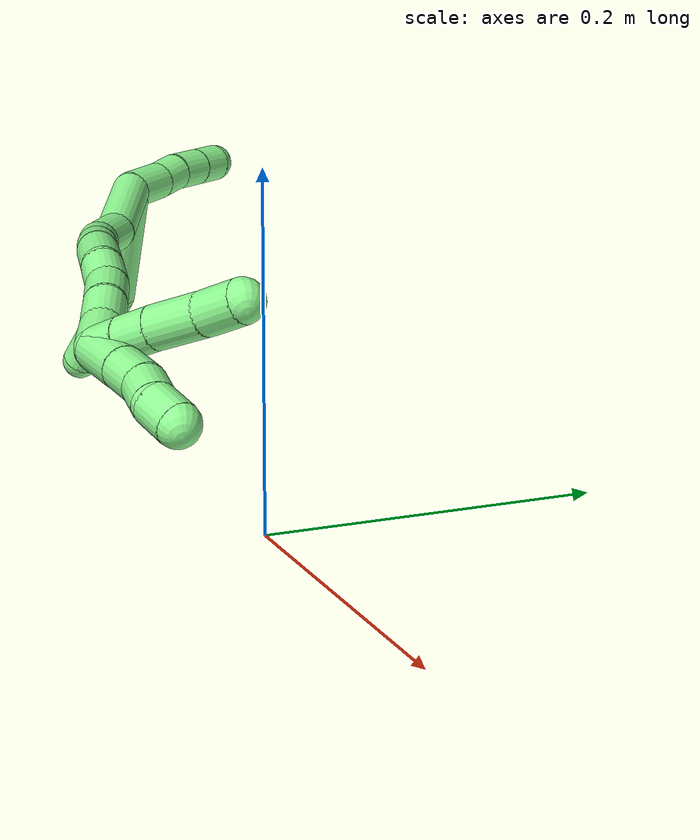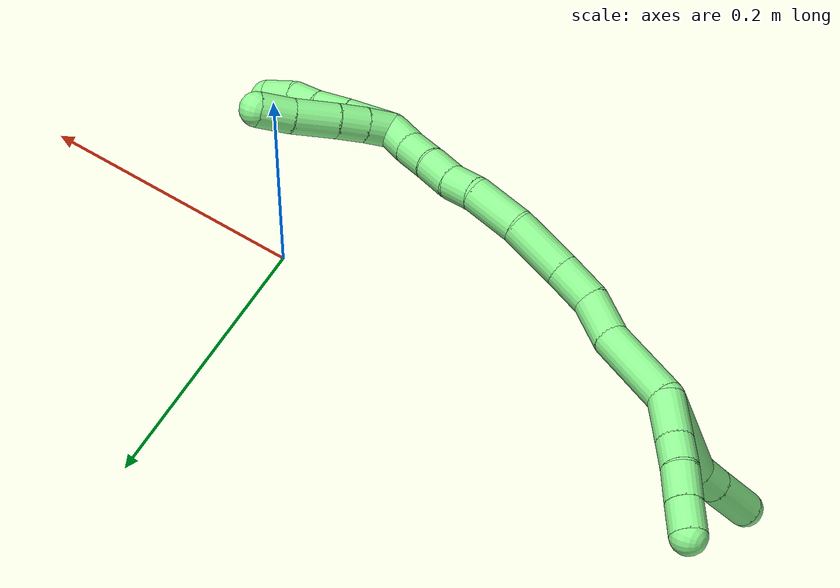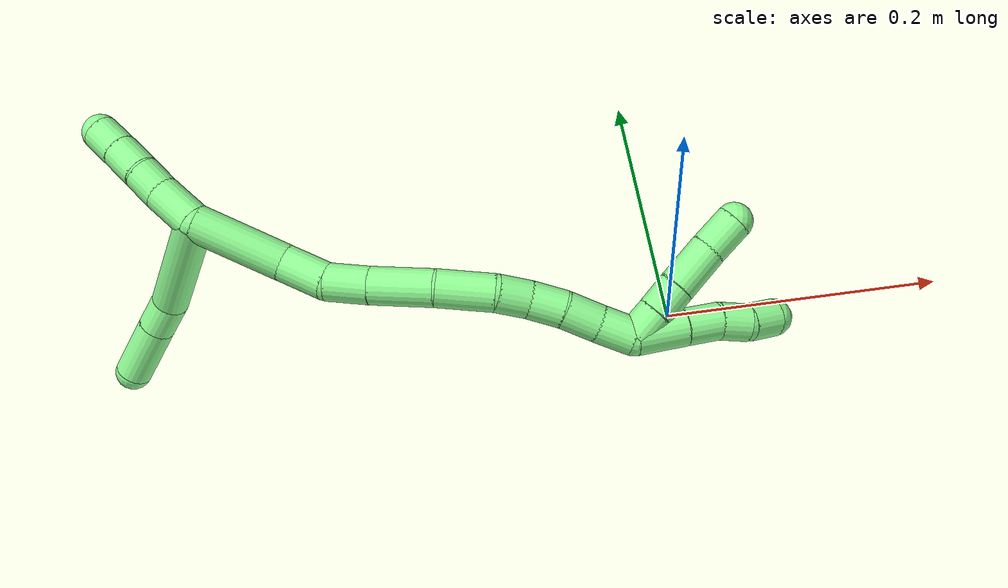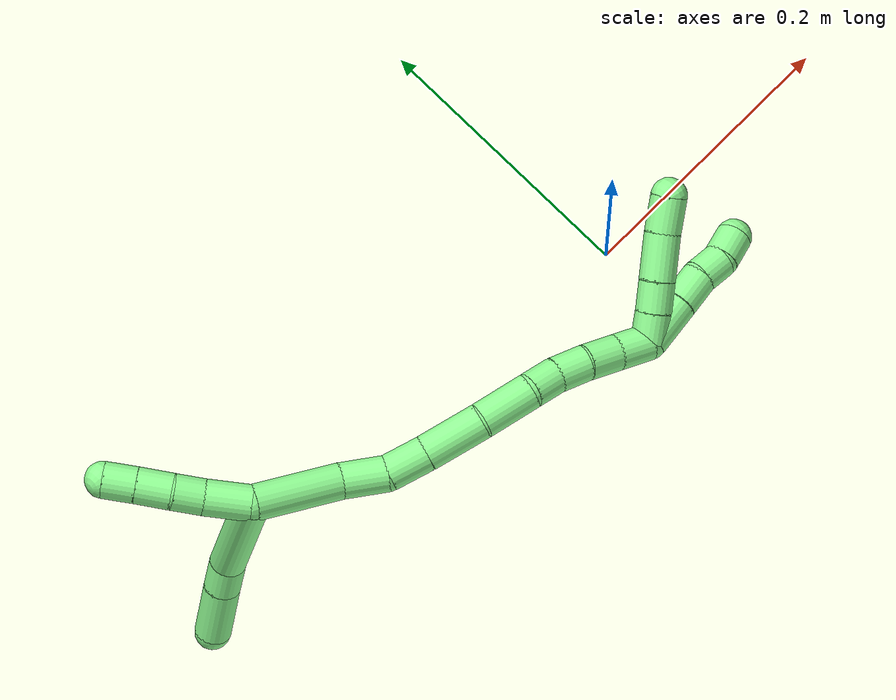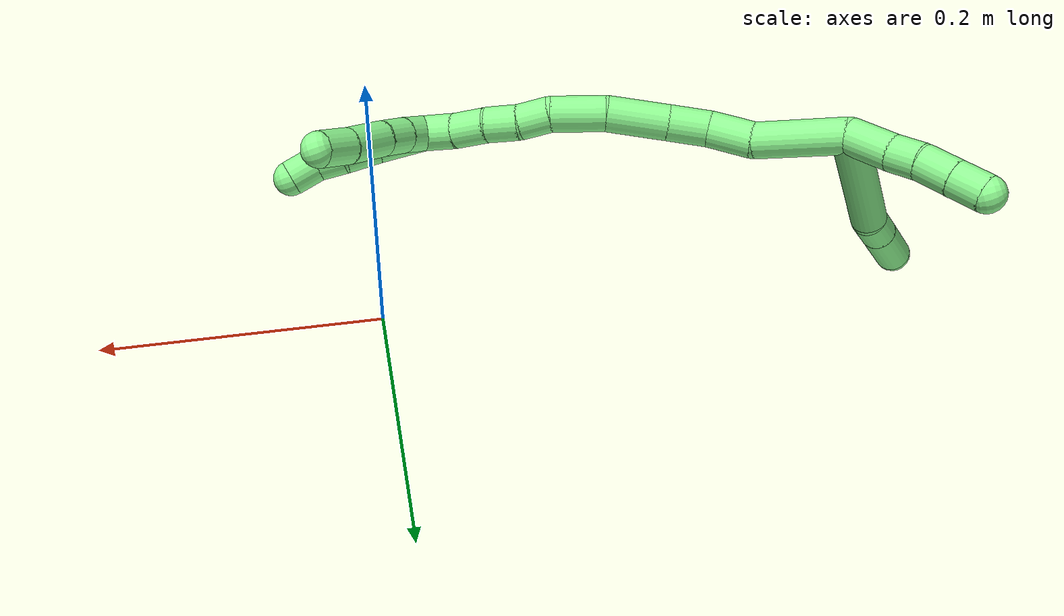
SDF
<sdf version="1.7">
 <world name="default">
  <model name="13">
   <static>0</static>
   <link name="13">
    <collision name="collision-cylinder-e_1_2_8">
     <pose>-0.041519 0.006219 -0.000514 -1.65327 -1.42162 1.50368</pose>
     <geometry><cylinder><radius>0.0125</radius><length>0.08397</length></cylinder></geometry>
     <surface>
      <friction><ode><mu>1.16</mu><mu2>1.16</mu2><slip1>0</slip1><slip2>0</slip2></ode></friction>
      <contact><ode><kp>1e+06</kp><kd>1</kd><max_vel>0</max_vel><min_depth>0.001</min_depth></ode></contact>
     </surface>
    </collision>
    <visual name="visual-cylinder-e_1_2_8">
     <pose>-0.041519 0.006219 -0.000514 -1.65327 -1.42162 1.50368</pose>
     <geometry><cylinder><radius>0.0125</radius><length>0.08397</length></cylinder></geometry>
     <material><ambient>0.564706 0.984314 0.572549 1</ambient></material>
    </visual>
    <collision name="collision-cylinder-e_2_8_9">
     <pose>-0.094609 0.011266 0.001126 0.49789 -1.36201 -0.406316</pose>
     <geometry><cylinder><radius>0.0125</radius><length>0.023656</length></cylinder></geometry>
     <surface>
      <friction><ode><mu>1.16</mu><mu2>1.16</mu2><slip1>0</slip1><slip2>0</slip2></ode></friction>
      <contact><ode><kp>1e+06</kp><kd>1</kd><max_vel>0</max_vel><min_depth>0.001</min_depth></ode></contact>
     </surface>
    </collision>
    <visual name="visual-cylinder-e_2_8_9">
     <pose>-0.094609 0.011266 0.001126 0.49789 -1.36201 -0.406316</pose>
     <geometry><cylinder><radius>0.0125</radius><length>0.023656</length></cylinder></geometry>
     <material><ambient>0.564706 0.984314 0.572549 1</ambient></material>
    </visual>
    <collision name="collision-cylinder-e_3_9_6">
     <pose>-0.126899 0.007621 0.006949 0.593348 -1.36036 -0.484862</pose>
     <geometry><cylinder><radius>0.0125</radius><length>0.042374</length></cylinder></geometry>
     <surface>
      <friction><ode><mu>1.16</mu><mu2>1.16</mu2><slip1>0</slip1><slip2>0</slip2></ode></friction>
      <contact><ode><kp>1e+06</kp><kd>1</kd><max_vel>0</max_vel><min_depth>0.001</min_depth></ode></contact>
     </surface>
    </collision>
    <visual name="visual-cylinder-e_3_9_6">
     <pose>-0.126899 0.007621 0.006949 0.593348 -1.36036 -0.484862</pose>
     <geometry><cylinder><radius>0.0125</radius><length>0.042374</length></cylinder></geometry>
     <material><ambient>0.564706 0.984314 0.572549 1</ambient></material>
    </visual>
    <collision name="collision-cylinder-e_1_2_10">
     <pose>-0.000393 0.011919 0.010819 -0.833719 -0.024394 0.010803</pose>
     <geometry><cylinder><radius>0.0125</radius><length>0.032204</length></cylinder></geometry>
     <surface>
      <friction><ode><mu>1.16</mu><mu2>1.16</mu2><slip1>0</slip1><slip2>0</slip2></ode></friction>
      <contact><ode><kp>1e+06</kp><kd>1</kd><max_vel>0</max_vel><min_depth>0.001</min_depth></ode></contact>
     </surface>
    </collision>
    <visual name="visual-cylinder-e_1_2_10">
     <pose>-0.000393 0.011919 0.010819 -0.833719 -0.024394 0.010803</pose>
     <geometry><cylinder><radius>0.0125</radius><length>0.032204</length></cylinder></geometry>
     <material><ambient>0.564706 0.984314 0.572549 1</ambient></material>
    </visual>
    <collision name="collision-cylinder-e_2_10_11">
     <pose>8.3e-05 0.031486 0.028841 -0.81539 0.082489 -0.035643</pose>
     <geometry><cylinder><radius>0.0125</radius><length>0.021083</length></cylinder></geometry>
     <surface>
      <friction><ode><mu>1.16</mu><mu2>1.16</mu2><slip1>0</slip1><slip2>0</slip2></ode></friction>
      <contact><ode><kp>1e+06</kp><kd>1</kd><max_vel>0</max_vel><min_depth>0.001</min_depth></ode></contact>
     </surface>
    </collision>
    <visual name="visual-cylinder-e_2_10_11">
     <pose>8.3e-05 0.031486 0.028841 -0.81539 0.082489 -0.035643</pose>
     <geometry><cylinder><radius>0.0125</radius><length>0.021083</length></cylinder></geometry>
     <material><ambient>0.564706 0.984314 0.572549 1</ambient></material>
    </visual>
    <collision name="collision-cylinder-e_3_11_12">
     <pose>0.000507 0.048702 0.043448 -0.912196 -0.03677 0.018041</pose>
     <geometry><cylinder><radius>0.0125</radius><length>0.024212</length></cylinder></geometry>
     <surface>
      <friction><ode><mu>1.16</mu><mu2>1.16</mu2><slip1>0</slip1><slip2>0</slip2></ode></friction>
      <contact><ode><kp>1e+06</kp><kd>1</kd><max_vel>0</max_vel><min_depth>0.001</min_depth></ode></contact>
     </surface>
    </collision>
    <visual name="visual-cylinder-e_3_11_12">
     <pose>0.000507 0.048702 0.043448 -0.912196 -0.03677 0.018041</pose>
     <geometry><cylinder><radius>0.0125</radius><length>0.024212</length></cylinder></geometry>
     <material><ambient>0.564706 0.984314 0.572549 1</ambient></material>
    </visual>
    <collision name="collision-cylinder-e_4_12_5">
     <pose>-0.000522 0.067066 0.057841 -0.899425 -0.05188 0.025047</pose>
     <geometry><cylinder><radius>0.0125</radius><length>0.022501</length></cylinder></geometry>
     <surface>
      <friction><ode><mu>1.16</mu><mu2>1.16</mu2><slip1>0</slip1><slip2>0</slip2></ode></friction>
      <contact><ode><kp>1e+06</kp><kd>1</kd><max_vel>0</max_vel><min_depth>0.001</min_depth></ode></contact>
     </surface>
    </collision>
    <visual name="visual-cylinder-e_4_12_5">
     <pose>-0.000522 0.067066 0.057841 -0.899425 -0.05188 0.025047</pose>
     <geometry><cylinder><radius>0.0125</radius><length>0.022501</length></cylinder></geometry>
     <material><ambient>0.564706 0.984314 0.572549 1</ambient></material>
    </visual>
    <collision name="collision-cylinder-e_1_2_13">
     <pose>-0.000542 -0.011251 -0.029622 2.77859 -0.017108 -0.093157</pose>
     <geometry><cylinder><radius>0.0125</radius><length>0.063382</length></cylinder></geometry>
     <surface>
      <friction><ode><mu>1.16</mu><mu2>1.16</mu2><slip1>0</slip1><slip2>0</slip2></ode></friction>
      <contact><ode><kp>1e+06</kp><kd>1</kd><max_vel>0</max_vel><min_depth>0.001</min_depth></ode></contact>
     </surface>
    </collision>
    <visual name="visual-cylinder-e_1_2_13">
     <pose>-0.000542 -0.011251 -0.029622 2.77859 -0.017108 -0.093157</pose>
     <geometry><cylinder><radius>0.0125</radius><length>0.063382</length></cylinder></geometry>
     <material><ambient>0.564706 0.984314 0.572549 1</ambient></material>
    </visual>
    <collision name="collision-cylinder-e_2_13_14">
     <pose>0.001747 -0.031324 -0.072362 2.54962 0.17719 0.566901</pose>
     <geometry><cylinder><radius>0.0125</radius><length>0.03212</length></cylinder></geometry>
     <surface>
      <friction><ode><mu>1.16</mu><mu2>1.16</mu2><slip1>0</slip1><slip2>0</slip2></ode></friction>
      <contact><ode><kp>1e+06</kp><kd>1</kd><max_vel>0</max_vel><min_depth>0.001</min_depth></ode></contact>
     </surface>
    </collision>
    <visual name="visual-cylinder-e_2_13_14">
     <pose>0.001747 -0.031324 -0.072362 2.54962 0.17719 0.566901</pose>
     <geometry><cylinder><radius>0.0125</radius><length>0.03212</length></cylinder></geometry>
     <material><ambient>0.564706 0.984314 0.572549 1</ambient></material>
    </visual>
    <collision name="collision-cylinder-e_3_14_15">
     <pose>0.00992 -0.044412 -0.098192 2.81771 0.379132 1.73089</pose>
     <geometry><cylinder><radius>0.0125</radius><length>0.028868</length></cylinder></geometry>
     <surface>
      <friction><ode><mu>1.16</mu><mu2>1.16</mu2><slip1>0</slip1><slip2>0</slip2></ode></friction>
      <contact><ode><kp>1e+06</kp><kd>1</kd><max_vel>0</max_vel><min_depth>0.001</min_depth></ode></contact>
     </surface>
    </collision>
    <visual name="visual-cylinder-e_3_14_15">
     <pose>0.00992 -0.044412 -0.098192 2.81771 0.379132 1.73089</pose>
     <geometry><cylinder><radius>0.0125</radius><length>0.028868</length></cylinder></geometry>
     <material><ambient>0.564706 0.984314 0.572549 1</ambient></material>
    </visual>
    <collision name="collision-cylinder-e_4_15_16">
     <pose>0.023845 -0.0543 -0.129597 2.84952 0.414268 1.92027</pose>
     <geometry><cylinder><radius>0.0125</radius><length>0.042645</length></cylinder></geometry>
     <surface>
      <friction><ode><mu>1.16</mu><mu2>1.16</mu2><slip1>0</slip1><slip2>0</slip2></ode></friction>
      <contact><ode><kp>1e+06</kp><kd>1</kd><max_vel>0</max_vel><min_depth>0.001</min_depth></ode></contact>
     </surface>
    </collision>
    <visual name="visual-cylinder-e_4_15_16">
     <pose>0.023845 -0.0543 -0.129597 2.84952 0.414268 1.92027</pose>
     <geometry><cylinder><radius>0.0125</radius><length>0.042645</length></cylinder></geometry>
     <material><ambient>0.564706 0.984314 0.572549 1</ambient></material>
    </visual>
    <collision name="collision-cylinder-e_5_16_17">
     <pose>0.03774 -0.063347 -0.166415 2.95474 0.280414 1.96941</pose>
     <geometry><cylinder><radius>0.0125</radius><length>0.038393</length></cylinder></geometry>
     <surface>
      <friction><ode><mu>1.16</mu><mu2>1.16</mu2><slip1>0</slip1><slip2>0</slip2></ode></friction>
      <contact><ode><kp>1e+06</kp><kd>1</kd><max_vel>0</max_vel><min_depth>0.001</min_depth></ode></contact>
     </surface>
    </collision>
    <visual name="visual-cylinder-e_5_16_17">
     <pose>0.03774 -0.063347 -0.166415 2.95474 0.280414 1.96941</pose>
     <geometry><cylinder><radius>0.0125</radius><length>0.038393</length></cylinder></geometry>
     <material><ambient>0.564706 0.984314 0.572549 1</ambient></material>
    </visual>
    <collision name="collision-cylinder-e_6_17_18">
     <pose>0.043514 -0.067578 -0.195589 3.06889 0.041617 1.0395</pose>
     <geometry><cylinder><radius>0.0125</radius><length>0.022174</length></cylinder></geometry>
     <surface>
      <friction><ode><mu>1.16</mu><mu2>1.16</mu2><slip1>0</slip1><slip2>0</slip2></ode></friction>
      <contact><ode><kp>1e+06</kp><kd>1</kd><max_vel>0</max_vel><min_depth>0.001</min_depth></ode></contact>
     </surface>
    </collision>
    <visual name="visual-cylinder-e_6_17_18">
     <pose>0.043514 -0.067578 -0.195589 3.06889 0.041617 1.0395</pose>
     <geometry><cylinder><radius>0.0125</radius><length>0.022174</length></cylinder></geometry>
     <material><ambient>0.564706 0.984314 0.572549 1</ambient></material>
    </visual>
    <collision name="collision-cylinder-e_7_18_19">
     <pose>0.044978 -0.07135 -0.217935 2.88482 0.085641 0.640905</pose>
     <geometry><cylinder><radius>0.0125</radius><length>0.023449</length></cylinder></geometry>
     <surface>
      <friction><ode><mu>1.16</mu><mu2>1.16</mu2><slip1>0</slip1><slip2>0</slip2></ode></friction>
      <contact><ode><kp>1e+06</kp><kd>1</kd><max_vel>0</max_vel><min_depth>0.001</min_depth></ode></contact>
     </surface>
    </collision>
    <visual name="visual-cylinder-e_7_18_19">
     <pose>0.044978 -0.07135 -0.217935 2.88482 0.085641 0.640905</pose>
     <geometry><cylinder><radius>0.0125</radius><length>0.023449</length></cylinder></geometry>
     <material><ambient>0.564706 0.984314 0.572549 1</ambient></material>
    </visual>
    <collision name="collision-cylinder-e_8_19_20">
     <pose>0.045244 -0.077347 -0.241049 2.89048 -0.060326 -0.469289</pose>
     <geometry><cylinder><radius>0.0125</radius><length>0.02444</length></cylinder></geometry>
     <surface>
      <friction><ode><mu>1.16</mu><mu2>1.16</mu2><slip1>0</slip1><slip2>0</slip2></ode></friction>
      <contact><ode><kp>1e+06</kp><kd>1</kd><max_vel>0</max_vel><min_depth>0.001</min_depth></ode></contact>
     </surface>
    </collision>
    <visual name="visual-cylinder-e_8_19_20">
     <pose>0.045244 -0.077347 -0.241049 2.89048 -0.060326 -0.469289</pose>
     <geometry><cylinder><radius>0.0125</radius><length>0.02444</length></cylinder></geometry>
     <material><ambient>0.564706 0.984314 0.572549 1</ambient></material>
    </visual>
    <collision name="collision-cylinder-e_9_20_1">
     <pose>0.044827 -0.084114 -0.264541 2.83194 0.026068 0.16665</pose>
     <geometry><cylinder><radius>0.0125</radius><length>0.024528</length></cylinder></geometry>
     <surface>
      <friction><ode><mu>1.16</mu><mu2>1.16</mu2><slip1>0</slip1><slip2>0</slip2></ode></friction>
      <contact><ode><kp>1e+06</kp><kd>1</kd><max_vel>0</max_vel><min_depth>0.001</min_depth></ode></contact>
     </surface>
    </collision>
    <visual name="visual-cylinder-e_9_20_1">
     <pose>0.044827 -0.084114 -0.264541 2.83194 0.026068 0.16665</pose>
     <geometry><cylinder><radius>0.0125</radius><length>0.024528</length></cylinder></geometry>
     <material><ambient>0.564706 0.984314 0.572549 1</ambient></material>
    </visual>
    <collision name="collision-cylinder-e_1_1_21">
     <pose>0.052798 -0.083161 -0.281431 -2.40905 0.828987 -1.70757</pose>
     <geometry><cylinder><radius>0.0125</radius><length>0.020756</length></cylinder></geometry>
     <surface>
      <friction><ode><mu>1.16</mu><mu2>1.16</mu2><slip1>0</slip1><slip2>0</slip2></ode></friction>
      <contact><ode><kp>1e+06</kp><kd>1</kd><max_vel>0</max_vel><min_depth>0.001</min_depth></ode></contact>
     </surface>
    </collision>
    <visual name="visual-cylinder-e_1_1_21">
     <pose>0.052798 -0.083161 -0.281431 -2.40905 0.828987 -1.70757</pose>
     <geometry><cylinder><radius>0.0125</radius><length>0.020756</length></cylinder></geometry>
     <material><ambient>0.564706 0.984314 0.572549 1</ambient></material>
    </visual>
    <collision name="collision-cylinder-e_2_21_22">
     <pose>0.068076 -0.073181 -0.291849 -2.34809 0.798986 -1.57846</pose>
     <geometry><cylinder><radius>0.0125</radius><length>0.021283</length></cylinder></geometry>
     <surface>
      <friction><ode><mu>1.16</mu><mu2>1.16</mu2><slip1>0</slip1><slip2>0</slip2></ode></friction>
      <contact><ode><kp>1e+06</kp><kd>1</kd><max_vel>0</max_vel><min_depth>0.001</min_depth></ode></contact>
     </surface>
    </collision>
    <visual name="visual-cylinder-e_2_21_22">
     <pose>0.068076 -0.073181 -0.291849 -2.34809 0.798986 -1.57846</pose>
     <geometry><cylinder><radius>0.0125</radius><length>0.021283</length></cylinder></geometry>
     <material><ambient>0.564706 0.984314 0.572549 1</ambient></material>
    </visual>
    <collision name="collision-cylinder-e_3_22_23">
     <pose>0.086812 -0.059508 -0.305424 -2.35539 0.753371 -1.52364</pose>
     <geometry><cylinder><radius>0.0125</radius><length>0.032482</length></cylinder></geometry>
     <surface>
      <friction><ode><mu>1.16</mu><mu2>1.16</mu2><slip1>0</slip1><slip2>0</slip2></ode></friction>
      <contact><ode><kp>1e+06</kp><kd>1</kd><max_vel>0</max_vel><min_depth>0.001</min_depth></ode></contact>
     </surface>
    </collision>
    <visual name="visual-cylinder-e_3_22_23">
     <pose>0.086812 -0.059508 -0.305424 -2.35539 0.753371 -1.52364</pose>
     <geometry><cylinder><radius>0.0125</radius><length>0.032482</length></cylinder></geometry>
     <material><ambient>0.564706 0.984314 0.572549 1</ambient></material>
    </visual>
    <collision name="collision-cylinder-e_4_23_4">
     <pose>0.107089 -0.045372 -0.320515 -2.4337 0.803097 -1.70937</pose>
     <geometry><cylinder><radius>0.0125</radius><length>0.025479</length></cylinder></geometry>
     <surface>
      <friction><ode><mu>1.16</mu><mu2>1.16</mu2><slip1>0</slip1><slip2>0</slip2></ode></friction>
      <contact><ode><kp>1e+06</kp><kd>1</kd><max_vel>0</max_vel><min_depth>0.001</min_depth></ode></contact>
     </surface>
    </collision>
    <visual name="visual-cylinder-e_4_23_4">
     <pose>0.107089 -0.045372 -0.320515 -2.4337 0.803097 -1.70937</pose>
     <geometry><cylinder><radius>0.0125</radius><length>0.025479</length></cylinder></geometry>
     <material><ambient>0.564706 0.984314 0.572549 1</ambient></material>
    </visual>
    <collision name="collision-cylinder-e_1_1_24">
     <pose>0.050394 -0.084905 -0.292366 -2.96121 0.309415 -2.09056</pose>
     <geometry><cylinder><radius>0.0125</radius><length>0.034466</length></cylinder></geometry>
     <surface>
      <friction><ode><mu>1.16</mu><mu2>1.16</mu2><slip1>0</slip1><slip2>0</slip2></ode></friction>
      <contact><ode><kp>1e+06</kp><kd>1</kd><max_vel>0</max_vel><min_depth>0.001</min_depth></ode></contact>
     </surface>
    </collision>
    <visual name="visual-cylinder-e_1_1_24">
     <pose>0.050394 -0.084905 -0.292366 -2.96121 0.309415 -2.09056</pose>
     <geometry><cylinder><radius>0.0125</radius><length>0.034466</length></cylinder></geometry>
     <material><ambient>0.564706 0.984314 0.572549 1</ambient></material>
    </visual>
    <collision name="collision-cylinder-e_2_24_25">
     <pose>0.058845 -0.079618 -0.31995 -2.9396 0.267837 -1.85179</pose>
     <geometry><cylinder><radius>0.0125</radius><length>0.024209</length></cylinder></geometry>
     <surface>
      <friction><ode><mu>1.16</mu><mu2>1.16</mu2><slip1>0</slip1><slip2>0</slip2></ode></friction>
      <contact><ode><kp>1e+06</kp><kd>1</kd><max_vel>0</max_vel><min_depth>0.001</min_depth></ode></contact>
     </surface>
    </collision>
    <visual name="visual-cylinder-e_2_24_25">
     <pose>0.058845 -0.079618 -0.31995 -2.9396 0.267837 -1.85179</pose>
     <geometry><cylinder><radius>0.0125</radius><length>0.024209</length></cylinder></geometry>
     <material><ambient>0.564706 0.984314 0.572549 1</ambient></material>
    </visual>
    <collision name="collision-cylinder-e_3_25_26">
     <pose>0.063402 -0.077104 -0.341395 -3.12432 0.134385 -2.88632</pose>
     <geometry><cylinder><radius>0.0125</radius><length>0.020205</length></cylinder></geometry>
     <surface>
      <friction><ode><mu>1.16</mu><mu2>1.16</mu2><slip1>0</slip1><slip2>0</slip2></ode></friction>
      <contact><ode><kp>1e+06</kp><kd>1</kd><max_vel>0</max_vel><min_depth>0.001</min_depth></ode></contact>
     </surface>
    </collision>
    <visual name="visual-cylinder-e_3_25_26">
     <pose>0.063402 -0.077104 -0.341395 -3.12432 0.134385 -2.88632</pose>
     <geometry><cylinder><radius>0.0125</radius><length>0.020205</length></cylinder></geometry>
     <material><ambient>0.564706 0.984314 0.572549 1</ambient></material>
    </visual>
    <collision name="collision-cylinder-e_4_26_3">
     <pose>0.06594 -0.073285 -0.361245 -2.78681 0.112358 -0.607948</pose>
     <geometry><cylinder><radius>0.0125</radius><length>0.02112</length></cylinder></geometry>
     <surface>
      <friction><ode><mu>1.16</mu><mu2>1.16</mu2><slip1>0</slip1><slip2>0</slip2></ode></friction>
      <contact><ode><kp>1e+06</kp><kd>1</kd><max_vel>0</max_vel><min_depth>0.001</min_depth></ode></contact>
     </surface>
    </collision>
    <visual name="visual-cylinder-e_4_26_3">
     <pose>0.06594 -0.073285 -0.361245 -2.78681 0.112358 -0.607948</pose>
     <geometry><cylinder><radius>0.0125</radius><length>0.02112</length></cylinder></geometry>
     <material><ambient>0.564706 0.984314 0.572549 1</ambient></material>
    </visual>
    <collision name="collision-sphere-3">
     <pose>0.067124 -0.06964 -0.371085 0 -0 0</pose>
     <geometry><sphere><radius>0.0125</radius></sphere></geometry>
     <surface>
      <friction><ode><mu>1.16</mu><mu2>1.16</mu2><slip1>0</slip1><slip2>0</slip2></ode></friction>
      <contact><ode><kp>1e+06</kp><kd>1</kd><max_vel>0</max_vel><min_depth>0.001</min_depth></ode></contact>
     </surface>
    </collision>
    <visual name="visual-sphere-3">
     <pose>0.067124 -0.06964 -0.371085 0 -0 0</pose>
     <geometry><sphere><radius>0.0125</radius></sphere></geometry>
     <material><ambient>0.564706 0.984314 0.572549 1</ambient></material>
    </visual>
    <collision name="collision-sphere-26">
     <pose>0.064756 -0.076931 -0.351405 0 -0 0</pose>
     <geometry><sphere><radius>0.0125</radius></sphere></geometry>
     <surface>
      <friction><ode><mu>1.16</mu><mu2>1.16</mu2><slip1>0</slip1><slip2>0</slip2></ode></friction>
      <contact><ode><kp>1e+06</kp><kd>1</kd><max_vel>0</max_vel><min_depth>0.001</min_depth></ode></contact>
     </surface>
    </collision>
    <visual name="visual-sphere-26">
     <pose>0.064756 -0.076931 -0.351405 0 -0 0</pose>
     <geometry><sphere><radius>0.0125</radius></sphere></geometry>
     <material><ambient>0.564706 0.984314 0.572549 1</ambient></material>
    </visual>
    <collision name="collision-sphere-25">
     <pose>0.062049 -0.077277 -0.331385 0 -0 0</pose>
     <geometry><sphere><radius>0.0125</radius></sphere></geometry>
     <surface>
      <friction><ode><mu>1.16</mu><mu2>1.16</mu2><slip1>0</slip1><slip2>0</slip2></ode></friction>
      <contact><ode><kp>1e+06</kp><kd>1</kd><max_vel>0</max_vel><min_depth>0.001</min_depth></ode></contact>
     </surface>
    </collision>
    <visual name="visual-sphere-25">
     <pose>0.062049 -0.077277 -0.331385 0 -0 0</pose>
     <geometry><sphere><radius>0.0125</radius></sphere></geometry>
     <material><ambient>0.564706 0.984314 0.572549 1</ambient></material>
    </visual>
    <collision name="collision-sphere-24">
     <pose>0.055642 -0.08196 -0.308514 0 -0 0</pose>
     <geometry><sphere><radius>0.0125</radius></sphere></geometry>
     <surface>
      <friction><ode><mu>1.16</mu><mu2>1.16</mu2><slip1>0</slip1><slip2>0</slip2></ode></friction>
      <contact><ode><kp>1e+06</kp><kd>1</kd><max_vel>0</max_vel><min_depth>0.001</min_depth></ode></contact>
     </surface>
    </collision>
    <visual name="visual-sphere-24">
     <pose>0.055642 -0.08196 -0.308514 0 -0 0</pose>
     <geometry><sphere><radius>0.0125</radius></sphere></geometry>
     <material><ambient>0.564706 0.984314 0.572549 1</ambient></material>
    </visual>
    <collision name="collision-sphere-4">
     <pose>0.116255 -0.039619 -0.327237 0 -0 0</pose>
     <geometry><sphere><radius>0.0125</radius></sphere></geometry>
     <surface>
      <friction><ode><mu>1.16</mu><mu2>1.16</mu2><slip1>0</slip1><slip2>0</slip2></ode></friction>
      <contact><ode><kp>1e+06</kp><kd>1</kd><max_vel>0</max_vel><min_depth>0.001</min_depth></ode></contact>
     </surface>
    </collision>
    <visual name="visual-sphere-4">
     <pose>0.116255 -0.039619 -0.327237 0 -0 0</pose>
     <geometry><sphere><radius>0.0125</radius></sphere></geometry>
     <material><ambient>0.564706 0.984314 0.572549 1</ambient></material>
    </visual>
    <collision name="collision-sphere-23">
     <pose>0.097922 -0.051125 -0.313793 0 -0 0</pose>
     <geometry><sphere><radius>0.0125</radius></sphere></geometry>
     <surface>
      <friction><ode><mu>1.16</mu><mu2>1.16</mu2><slip1>0</slip1><slip2>0</slip2></ode></friction>
      <contact><ode><kp>1e+06</kp><kd>1</kd><max_vel>0</max_vel><min_depth>0.001</min_depth></ode></contact>
     </surface>
    </collision>
    <visual name="visual-sphere-23">
     <pose>0.097922 -0.051125 -0.313793 0 -0 0</pose>
     <geometry><sphere><radius>0.0125</radius></sphere></geometry>
     <material><ambient>0.564706 0.984314 0.572549 1</ambient></material>
    </visual>
    <collision name="collision-sphere-22">
     <pose>0.075702 -0.067891 -0.297054 0 -0 0</pose>
     <geometry><sphere><radius>0.0125</radius></sphere></geometry>
     <surface>
      <friction><ode><mu>1.16</mu><mu2>1.16</mu2><slip1>0</slip1><slip2>0</slip2></ode></friction>
      <contact><ode><kp>1e+06</kp><kd>1</kd><max_vel>0</max_vel><min_depth>0.001</min_depth></ode></contact>
     </surface>
    </collision>
    <visual name="visual-sphere-22">
     <pose>0.075702 -0.067891 -0.297054 0 -0 0</pose>
     <geometry><sphere><radius>0.0125</radius></sphere></geometry>
     <material><ambient>0.564706 0.984314 0.572549 1</ambient></material>
    </visual>
    <collision name="collision-sphere-21">
     <pose>0.060449 -0.078472 -0.286644 0 -0 0</pose>
     <geometry><sphere><radius>0.0125</radius></sphere></geometry>
     <surface>
      <friction><ode><mu>1.16</mu><mu2>1.16</mu2><slip1>0</slip1><slip2>0</slip2></ode></friction>
      <contact><ode><kp>1e+06</kp><kd>1</kd><max_vel>0</max_vel><min_depth>0.001</min_depth></ode></contact>
     </surface>
    </collision>
    <visual name="visual-sphere-21">
     <pose>0.060449 -0.078472 -0.286644 0 -0 0</pose>
     <geometry><sphere><radius>0.0125</radius></sphere></geometry>
     <material><ambient>0.564706 0.984314 0.572549 1</ambient></material>
    </visual>
    <collision name="collision-sphere-1">
     <pose>0.045147 -0.08785 -0.276218 0 -0 0</pose>
     <geometry><sphere><radius>0.0125</radius></sphere></geometry>
     <surface>
      <friction><ode><mu>1.16</mu><mu2>1.16</mu2><slip1>0</slip1><slip2>0</slip2></ode></friction>
      <contact><ode><kp>1e+06</kp><kd>1</kd><max_vel>0</max_vel><min_depth>0.001</min_depth></ode></contact>
     </surface>
    </collision>
    <visual name="visual-sphere-1">
     <pose>0.045147 -0.08785 -0.276218 0 -0 0</pose>
     <geometry><sphere><radius>0.0125</radius></sphere></geometry>
     <material><ambient>0.564706 0.984314 0.572549 1</ambient></material>
    </visual>
    <collision name="collision-sphere-11">
     <pose>0.000952 0.039134 0.036044 0 -0 0</pose>
     <geometry><sphere><radius>0.0125</radius></sphere></geometry>
     <surface>
      <friction><ode><mu>1.16</mu><mu2>1.16</mu2><slip1>0</slip1><slip2>0</slip2></ode></friction>
      <contact><ode><kp>1e+06</kp><kd>1</kd><max_vel>0</max_vel><min_depth>0.001</min_depth></ode></contact>
     </surface>
    </collision>
    <visual name="visual-sphere-11">
     <pose>0.000952 0.039134 0.036044 0 -0 0</pose>
     <geometry><sphere><radius>0.0125</radius></sphere></geometry>
     <material><ambient>0.564706 0.984314 0.572549 1</ambient></material>
    </visual>
    <collision name="collision-sphere-10">
     <pose>-0.000786 0.023838 0.021639 0 -0 0</pose>
     <geometry><sphere><radius>0.0125</radius></sphere></geometry>
     <surface>
      <friction><ode><mu>1.16</mu><mu2>1.16</mu2><slip1>0</slip1><slip2>0</slip2></ode></friction>
      <contact><ode><kp>1e+06</kp><kd>1</kd><max_vel>0</max_vel><min_depth>0.001</min_depth></ode></contact>
     </surface>
    </collision>
    <visual name="visual-sphere-10">
     <pose>-0.000786 0.023838 0.021639 0 -0 0</pose>
     <geometry><sphere><radius>0.0125</radius></sphere></geometry>
     <material><ambient>0.564706 0.984314 0.572549 1</ambient></material>
    </visual>
    <collision name="collision-sphere-6">
     <pose>-0.147619 0.005146 0.010618 0 -0 0</pose>
     <geometry><sphere><radius>0.0125</radius></sphere></geometry>
     <surface>
      <friction><ode><mu>1.16</mu><mu2>1.16</mu2><slip1>0</slip1><slip2>0</slip2></ode></friction>
      <contact><ode><kp>1e+06</kp><kd>1</kd><max_vel>0</max_vel><min_depth>0.001</min_depth></ode></contact>
     </surface>
    </collision>
    <visual name="visual-sphere-6">
     <pose>-0.147619 0.005146 0.010618 0 -0 0</pose>
     <geometry><sphere><radius>0.0125</radius></sphere></geometry>
     <material><ambient>0.564706 0.984314 0.572549 1</ambient></material>
    </visual>
    <collision name="collision-sphere-9">
     <pose>-0.10618 0.010096 0.00328 0 -0 0</pose>
     <geometry><sphere><radius>0.0125</radius></sphere></geometry>
     <surface>
      <friction><ode><mu>1.16</mu><mu2>1.16</mu2><slip1>0</slip1><slip2>0</slip2></ode></friction>
      <contact><ode><kp>1e+06</kp><kd>1</kd><max_vel>0</max_vel><min_depth>0.001</min_depth></ode></contact>
     </surface>
    </collision>
    <visual name="visual-sphere-9">
     <pose>-0.10618 0.010096 0.00328 0 -0 0</pose>
     <geometry><sphere><radius>0.0125</radius></sphere></geometry>
     <material><ambient>0.564706 0.984314 0.572549 1</ambient></material>
    </visual>
    <collision name="collision-sphere-2">
     <geometry><sphere><radius>0.0125</radius></sphere></geometry>
     <surface>
      <friction><ode><mu>1.16</mu><mu2>1.16</mu2><slip1>0</slip1><slip2>0</slip2></ode></friction>
      <contact><ode><kp>1e+06</kp><kd>1</kd><max_vel>0</max_vel><min_depth>0.001</min_depth></ode></contact>
     </surface>
    </collision>
    <visual name="visual-sphere-2">
     <geometry><sphere><radius>0.0125</radius></sphere></geometry>
     <material><ambient>0.564706 0.984314 0.572549 1</ambient></material>
    </visual>
    <collision name="collision-sphere-19">
     <pose>0.045981 -0.074316 -0.229234 0 -0 0</pose>
     <geometry><sphere><radius>0.0125</radius></sphere></geometry>
     <surface>
      <friction><ode><mu>1.16</mu><mu2>1.16</mu2><slip1>0</slip1><slip2>0</slip2></ode></friction>
      <contact><ode><kp>1e+06</kp><kd>1</kd><max_vel>0</max_vel><min_depth>0.001</min_depth></ode></contact>
     </surface>
    </collision>
    <visual name="visual-sphere-19">
     <pose>0.045981 -0.074316 -0.229234 0 -0 0</pose>
     <geometry><sphere><radius>0.0125</radius></sphere></geometry>
     <material><ambient>0.564706 0.984314 0.572549 1</ambient></material>
    </visual>
    <collision name="collision-sphere-8">
     <pose>-0.083038 0.012437 -0.001028 0 -0 0</pose>
     <geometry><sphere><radius>0.0125</radius></sphere></geometry>
     <surface>
      <friction><ode><mu>1.16</mu><mu2>1.16</mu2><slip1>0</slip1><slip2>0</slip2></ode></friction>
      <contact><ode><kp>1e+06</kp><kd>1</kd><max_vel>0</max_vel><min_depth>0.001</min_depth></ode></contact>
     </surface>
    </collision>
    <visual name="visual-sphere-8">
     <pose>-0.083038 0.012437 -0.001028 0 -0 0</pose>
     <geometry><sphere><radius>0.0125</radius></sphere></geometry>
     <material><ambient>0.564706 0.984314 0.572549 1</ambient></material>
    </visual>
    <collision name="collision-sphere-12">
     <pose>6.1e-05 0.058269 0.050852 0 -0 0</pose>
     <geometry><sphere><radius>0.0125</radius></sphere></geometry>
     <surface>
      <friction><ode><mu>1.16</mu><mu2>1.16</mu2><slip1>0</slip1><slip2>0</slip2></ode></friction>
      <contact><ode><kp>1e+06</kp><kd>1</kd><max_vel>0</max_vel><min_depth>0.001</min_depth></ode></contact>
     </surface>
    </collision>
    <visual name="visual-sphere-12">
     <pose>6.1e-05 0.058269 0.050852 0 -0 0</pose>
     <geometry><sphere><radius>0.0125</radius></sphere></geometry>
     <material><ambient>0.564706 0.984314 0.572549 1</ambient></material>
    </visual>
    <collision name="collision-sphere-5">
     <pose>-0.001105 0.075863 0.06483 0 -0 0</pose>
     <geometry><sphere><radius>0.0125</radius></sphere></geometry>
     <surface>
      <friction><ode><mu>1.16</mu><mu2>1.16</mu2><slip1>0</slip1><slip2>0</slip2></ode></friction>
      <contact><ode><kp>1e+06</kp><kd>1</kd><max_vel>0</max_vel><min_depth>0.001</min_depth></ode></contact>
     </surface>
    </collision>
    <visual name="visual-sphere-5">
     <pose>-0.001105 0.075863 0.06483 0 -0 0</pose>
     <geometry><sphere><radius>0.0125</radius></sphere></geometry>
     <material><ambient>0.564706 0.984314 0.572549 1</ambient></material>
    </visual>
    <collision name="collision-sphere-13">
     <pose>-0.001084 -0.022502 -0.059243 0 -0 0</pose>
     <geometry><sphere><radius>0.0125</radius></sphere></geometry>
     <surface>
      <friction><ode><mu>1.16</mu><mu2>1.16</mu2><slip1>0</slip1><slip2>0</slip2></ode></friction>
      <contact><ode><kp>1e+06</kp><kd>1</kd><max_vel>0</max_vel><min_depth>0.001</min_depth></ode></contact>
     </surface>
    </collision>
    <visual name="visual-sphere-13">
     <pose>-0.001084 -0.022502 -0.059243 0 -0 0</pose>
     <geometry><sphere><radius>0.0125</radius></sphere></geometry>
     <material><ambient>0.564706 0.984314 0.572549 1</ambient></material>
    </visual>
    <collision name="collision-sphere-14">
     <pose>0.004577 -0.040145 -0.085481 0 -0 0</pose>
     <geometry><sphere><radius>0.0125</radius></sphere></geometry>
     <surface>
      <friction><ode><mu>1.16</mu><mu2>1.16</mu2><slip1>0</slip1><slip2>0</slip2></ode></friction>
      <contact><ode><kp>1e+06</kp><kd>1</kd><max_vel>0</max_vel><min_depth>0.001</min_depth></ode></contact>
     </surface>
    </collision>
    <visual name="visual-sphere-14">
     <pose>0.004577 -0.040145 -0.085481 0 -0 0</pose>
     <geometry><sphere><radius>0.0125</radius></sphere></geometry>
     <material><ambient>0.564706 0.984314 0.572549 1</ambient></material>
    </visual>
    <collision name="collision-sphere-15">
     <pose>0.015262 -0.04868 -0.110904 0 -0 0</pose>
     <geometry><sphere><radius>0.0125</radius></sphere></geometry>
     <surface>
      <friction><ode><mu>1.16</mu><mu2>1.16</mu2><slip1>0</slip1><slip2>0</slip2></ode></friction>
      <contact><ode><kp>1e+06</kp><kd>1</kd><max_vel>0</max_vel><min_depth>0.001</min_depth></ode></contact>
     </surface>
    </collision>
    <visual name="visual-sphere-15">
     <pose>0.015262 -0.04868 -0.110904 0 -0 0</pose>
     <geometry><sphere><radius>0.0125</radius></sphere></geometry>
     <material><ambient>0.564706 0.984314 0.572549 1</ambient></material>
    </visual>
    <collision name="collision-sphere-16">
     <pose>0.032427 -0.05992 -0.148289 0 -0 0</pose>
     <geometry><sphere><radius>0.0125</radius></sphere></geometry>
     <surface>
      <friction><ode><mu>1.16</mu><mu2>1.16</mu2><slip1>0</slip1><slip2>0</slip2></ode></friction>
      <contact><ode><kp>1e+06</kp><kd>1</kd><max_vel>0</max_vel><min_depth>0.001</min_depth></ode></contact>
     </surface>
    </collision>
    <visual name="visual-sphere-16">
     <pose>0.032427 -0.05992 -0.148289 0 -0 0</pose>
     <geometry><sphere><radius>0.0125</radius></sphere></geometry>
     <material><ambient>0.564706 0.984314 0.572549 1</ambient></material>
    </visual>
    <collision name="collision-sphere-17">
     <pose>0.043053 -0.066774 -0.18454 0 -0 0</pose>
     <geometry><sphere><radius>0.0125</radius></sphere></geometry>
     <surface>
      <friction><ode><mu>1.16</mu><mu2>1.16</mu2><slip1>0</slip1><slip2>0</slip2></ode></friction>
      <contact><ode><kp>1e+06</kp><kd>1</kd><max_vel>0</max_vel><min_depth>0.001</min_depth></ode></contact>
     </surface>
    </collision>
    <visual name="visual-sphere-17">
     <pose>0.043053 -0.066774 -0.18454 0 -0 0</pose>
     <geometry><sphere><radius>0.0125</radius></sphere></geometry>
     <material><ambient>0.564706 0.984314 0.572549 1</ambient></material>
    </visual>
    <collision name="collision-sphere-18">
     <pose>0.043975 -0.068383 -0.206637 0 -0 0</pose>
     <geometry><sphere><radius>0.0125</radius></sphere></geometry>
     <surface>
      <friction><ode><mu>1.16</mu><mu2>1.16</mu2><slip1>0</slip1><slip2>0</slip2></ode></friction>
      <contact><ode><kp>1e+06</kp><kd>1</kd><max_vel>0</max_vel><min_depth>0.001</min_depth></ode></contact>
     </surface>
    </collision>
    <visual name="visual-sphere-18">
     <pose>0.043975 -0.068383 -0.206637 0 -0 0</pose>
     <geometry><sphere><radius>0.0125</radius></sphere></geometry>
     <material><ambient>0.564706 0.984314 0.572549 1</ambient></material>
    </visual>
    <collision name="collision-sphere-20">
     <pose>0.044508 -0.080378 -0.252864 0 -0 0</pose>
     <geometry><sphere><radius>0.0125</radius></sphere></geometry>
     <surface>
      <friction><ode><mu>1.16</mu><mu2>1.16</mu2><slip1>0</slip1><slip2>0</slip2></ode></friction>
      <contact><ode><kp>1e+06</kp><kd>1</kd><max_vel>0</max_vel><min_depth>0.001</min_depth></ode></contact>
     </surface>
    </collision>
    <visual name="visual-sphere-20">
     <pose>0.044508 -0.080378 -0.252864 0 -0 0</pose>
     <geometry><sphere><radius>0.0125</radius></sphere></geometry>
     <material><ambient>0.564706 0.984314 0.572549 1</ambient></material>
    </visual>
    <inertial>
     <pose>0.013087 -0.032478 -0.132909 0 -0 0</pose>
     <mass>0.75</mass>
     <inertia><ixx>4.6e-05</ixx><ixy>0</ixy><ixz>0</ixz><iyy>6.7e-05</iyy><iyz>0</iyz><izz>1.5e-05</izz></inertia>
    </inertial>
   </link>
   <pose>-0.313965 0.024589 0.143491 -0.513844 -1.13883 0.454632</pose>
  </model>
 </world>
</sdf>
